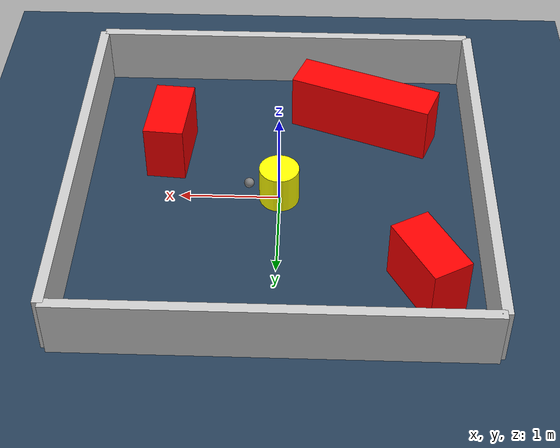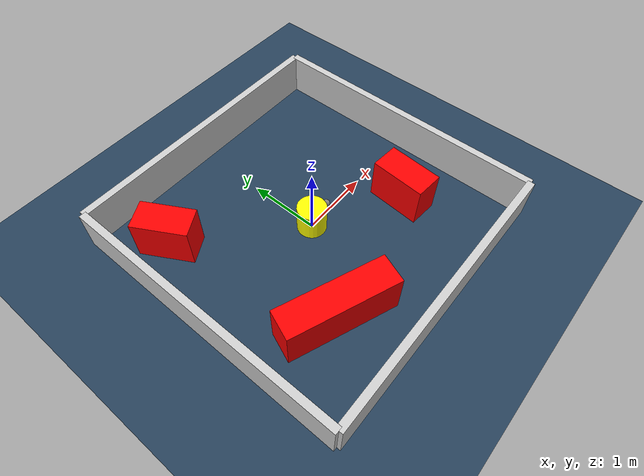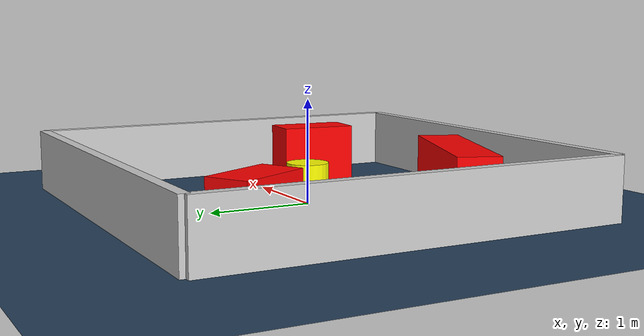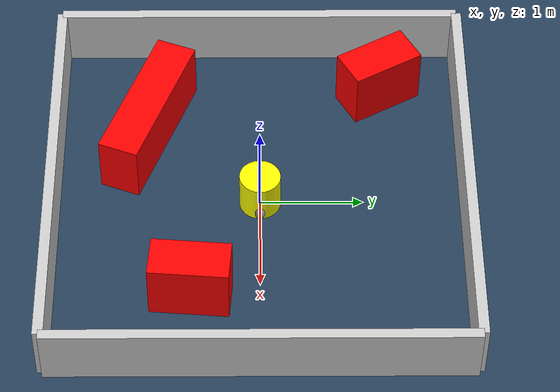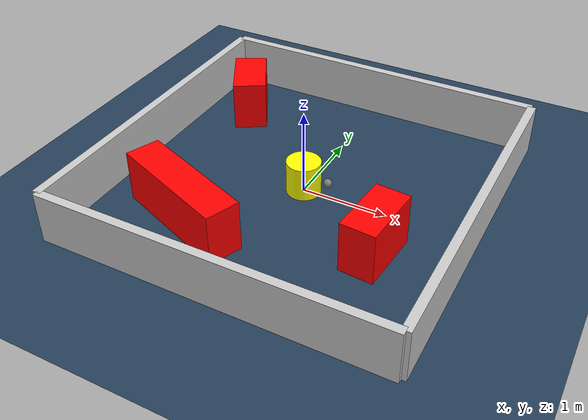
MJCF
<?xml version="1.0" ?>
<mujoco model="generated_environment">
  <option timestep="0.01" integrator="RK4" cone="elliptic"/>
  <default>
    <geom density="1"/>
  </default>
  <asset>
    <texture builtin="gradient" height="3072" rgb1="0.3 0.5 0.7" rgb2="0 0 0" type="skybox" width="512"/>
    <texture builtin="checker" height="300" mark="edge" markrgb="0.8 0.8 0.8" name="groundplane" rgb1="0.2 0.3 0.4" rgb2="0.1 0.2 0.3" type="2d" width="300"/>
    <material name="groundplane" reflectance="0.2" texrepeat="5 5" texture="groundplane" texuniform="true"/>
    <material name="robot" rgba="0.0 1.0 0.0 1"/>
  </asset>
  <worldbody>
    <light dir="0 0 -1" directional="true" pos="0 0 1.5"/>
    <geom condim="4" friction="1.0 0.005 0.001" material="groundplane" name="floor" size="0 0 0.05" type="plane"/>
    <body name="walls">
      <geom name="wall_1" condim="4" pos="-2.0 0.0 0.3" rgba="0.800000011920929 0.800000011920929 0.800000011920929 1.0" size="0.05 2.0 0.3" type="box"/>
      <geom name="wall_2" condim="4" pos="2.0 0.0 0.3" rgba="0.800000011920929 0.800000011920929 0.800000011920929 1.0" size="0.05 2.0 0.3" type="box"/>
      <geom name="wall_3" condim="4" pos="0.0 -2.0 0.3" rgba="0.800000011920929 0.800000011920929 0.800000011920929 1.0" size="2.0 0.05 0.3" type="box"/>
      <geom name="wall_4" condim="4" pos="0.0 2.0 0.3" rgba="0.800000011920929 0.800000011920929 0.800000011920929 1.0" size="2.0 0.05 0.3" type="box"/>
    </body>
    <body name="robot">
      <joint name="joint_x" type="slide" pos="0 0 0" axis="1 0 0"/>
      <joint name="joint_y" type="slide" pos="0 0 0" axis="0 1 0"/>
      <geom name="robot" type="sphere" pos="0.3 0.0 0.2" size="0.05" mass="5." friction="1.0 0.005 0.0001" condim="4" rgba="0.5 0.5 0.5 1.0"/>
      <site name="sensor_ball"/>
    </body>
    <body name="obstacle_movable_1">
      <geom name="obstacle_movable_1" condim="4" pos="0.0 0.0 0.2" euler="0 0 0.0" friction="1.0 0.005 0.001" rgba="1.0 1.0 0.0 1.0" size="0.2 0.2 0.0" type="cylinder" mass="0.1"/>
      <joint type="free"/>
    </body>
    <body name="obstacle_2_static">
      <geom name="obstacle_2_static" condim="4" pos="-0.8685295285467287 -1.1019417881274705 0.3" euler="0 0 158.76641521710232" friction="1.0 0.005 0.001" rgba="1 0 0 1" size="0.7458526468898157 0.2 0.3" type="box"/>
    </body>
    <body name="obstacle_3_static">
      <geom name="obstacle_3_static" condim="4" pos="1.146283446082876 -0.6545078002600617 0.3" euler="0 0 265.4294128674082" friction="1.0 0.005 0.001" rgba="1 0 0 1" size="0.37901760651691685 0.2 0.3" type="box"/>
    </body>
    <body name="obstacle_4_static">
      <geom name="obstacle_4_static" condim="4" pos="-1.4051672860947102 1.1967045400271268 0.3" euler="0 0 299.19990024667794" friction="1.0 0.005 0.001" rgba="1 0 0 1" size="0.3705149267102726 0.2 0.3" type="box"/>
    </body>
  </worldbody>
  <actuator>
    <motor name="actuator_x" joint="joint_x" gear="1" ctrlrange="-1 1"/>
    <motor name="actuator_y" joint="joint_y" gear="1" ctrlrange="-1 1"/>
  </actuator>
</mujoco>
